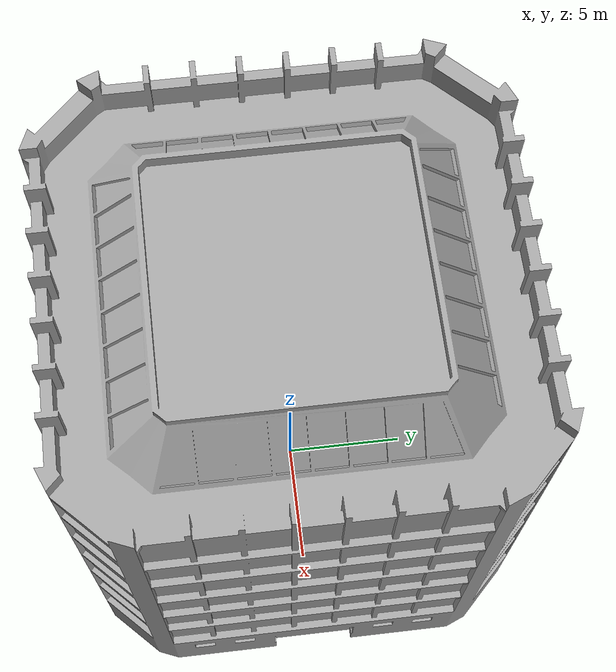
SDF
<?xml version="1.0" ?>
<sdf version="1.5">
  <model name="Office Building">
    <static>true</static>
    <link name="link">
      <collision name="collision">
        <geometry>
          <mesh>
            <uri>model://office_building/meshes/office_building.dae</uri>
          </mesh>
        </geometry>
      </collision>
      <visual name="visual">
        <geometry>
          <mesh>
            <uri>model://office_building/meshes/office_building.dae</uri>
          </mesh>
        </geometry>
      </visual>
    </link>
  </model>
</sdf>
